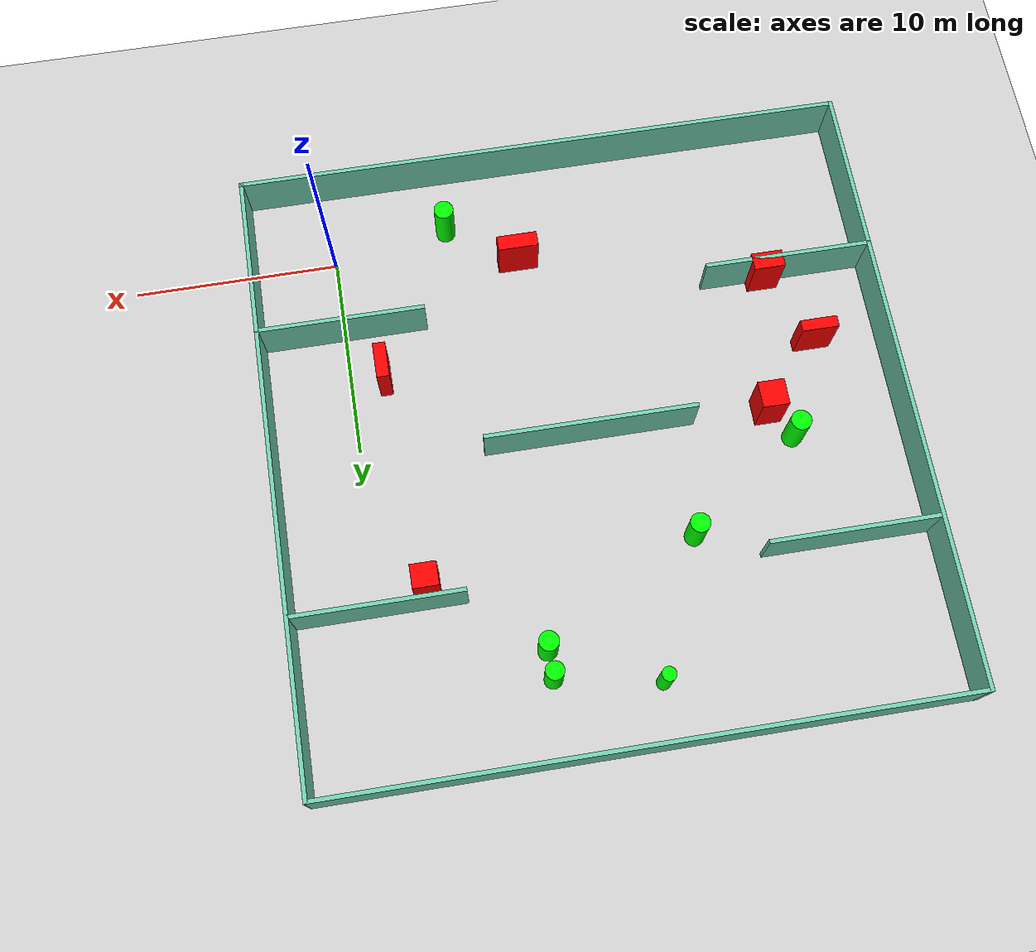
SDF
<sdf version="1.7">
 <world name="default">
  <light name="sun" type="directional">
   <pose>0 0 10 0 -0 0</pose>
   <diffuse>0.8 0.8 0.8 1</diffuse>
   <specular>0.2 0.2 0.2 1</specular>
   <attenuation>
    <range>1000</range>
    <constant>0.9</constant>
    <linear>0.01</linear>
    <quadratic>0.001</quadratic>
   </attenuation>
   <direction>-0.5 0.1 -0.9</direction>
   <spot><inner_angle>0</inner_angle><outer_angle>0</outer_angle><falloff>0</falloff></spot>
  </light>
  <model name="ground_plane">
   <static>1</static>
   <link name="link">
    <collision name="collision">
     <geometry><plane><normal>0 0 1</normal><size>100 100</size></plane></geometry>
     <surface>
      <contact><collide_bitmask>65535</collide_bitmask></contact>
      <friction><ode><mu>100</mu><mu2>50</mu2></ode></friction>
     </surface>
    </collision>
    <visual name="visual">
     <cast_shadows>0</cast_shadows>
     <geometry><plane><normal>0 0 1</normal><size>100 100</size></plane></geometry>
     <material>
      <script><uri>file://media/materials/scripts/gazebo.material</uri><name>Gazebo/Grey</name></script>
     </material>
    </visual>
   </link>
  </model>
  <gravity>0 0 -9.8</gravity>
  <magnetic_field>6e-06 2.3e-05 -4.2e-05</magnetic_field>
  <atmosphere type="adiabatic"/>
  <physics type="ode">
   <max_step_size>0.001</max_step_size>
   <real_time_factor>1</real_time_factor>
   <real_time_update_rate>1000</real_time_update_rate>
  </physics>
  <scene><ambient>0.4 0.4 0.4 1</ambient><background>0.7 0.7 0.7 1</background><shadows>1</shadows></scene>
  <spherical_coordinates>
   <surface_model>EARTH_WGS84</surface_model>
   <latitude_deg>0</latitude_deg>
   <longitude_deg>0</longitude_deg>
   <elevation>0</elevation>
   <heading_deg>0</heading_deg>
  </spherical_coordinates>
  <model name="my_base_walls">
   <link name="Wall_10">
    <collision name="Wall_10_Collision">
     <geometry><box><size>8.2 0.2 2.5</size></box></geometry>
     <pose>0 0 1.25 0 -0 0</pose>
    </collision>
    <visual name="Wall_10_Visual">
     <pose>0 0 1.25 0 -0 0</pose>
     <geometry><box><size>8.2 0.2 2.5</size></box></geometry>
     <material>
      <script><uri>file://media/materials/scripts/gazebo.material</uri><name>Gazebo/Grey</name></script>
      <ambient>0.435294 0.796078 0.67451 1</ambient>
     </material>
     <meta><layer>0</layer></meta>
    </visual>
    <pose>-11 -7 0 0 -0 0</pose>
   </link>
   <link name="Wall_12">
    <collision name="Wall_12_Collision">
     <geometry><box><size>8.2 0.2 2.5</size></box></geometry>
     <pose>0 0 1.25 0 -0 0</pose>
    </collision>
    <visual name="Wall_12_Visual">
     <pose>0 0 1.25 0 -0 0</pose>
     <geometry><box><size>8.2 0.2 2.5</size></box></geometry>
     <material>
      <script><uri>file://media/materials/scripts/gazebo.material</uri><name>Gazebo/Grey</name></script>
      <ambient>0.435294 0.796078 0.67451 1</ambient>
     </material>
     <meta><layer>0</layer></meta>
    </visual>
    <pose>-11 7 0 0 -0 0</pose>
   </link>
   <link name="Wall_14">
    <collision name="Wall_14_Collision">
     <geometry><box><size>8.2 0.2 2.5</size></box></geometry>
     <pose>0 0 1.25 0 -0 0</pose>
    </collision>
    <visual name="Wall_14_Visual">
     <pose>0 0 1.25 0 -0 0</pose>
     <geometry><box><size>8.2 0.2 2.5</size></box></geometry>
     <material>
      <script><uri>file://media/materials/scripts/gazebo.material</uri><name>Gazebo/Grey</name></script>
      <ambient>0.435294 0.796078 0.67451 1</ambient>
     </material>
     <meta><layer>0</layer></meta>
    </visual>
    <pose>11 7 0 0 -0 3.14159</pose>
   </link>
   <link name="Wall_16">
    <collision name="Wall_16_Collision">
     <geometry><box><size>10.2 0.2 2.5</size></box></geometry>
     <pose>0 0 1.25 0 -0 0</pose>
    </collision>
    <visual name="Wall_16_Visual">
     <pose>0 0 1.25 0 -0 0</pose>
     <geometry><box><size>10.2 0.2 2.5</size></box></geometry>
     <material>
      <script><uri>file://media/materials/scripts/gazebo.material</uri><name>Gazebo/Grey</name></script>
      <ambient>0.435294 0.796078 0.67451 1</ambient>
     </material>
     <meta><layer>0</layer></meta>
    </visual>
    <pose>0 0 0 0 -0 3.14159</pose>
   </link>
   <link name="Wall_2">
    <collision name="Wall_2_Collision">
     <geometry><box><size>30.2 0.2 2.5</size></box></geometry>
     <pose>0 0 1.25 0 -0 0</pose>
    </collision>
    <visual name="Wall_2_Visual">
     <pose>0 0 1.25 0 -0 0</pose>
     <geometry><box><size>30.2 0.2 2.5</size></box></geometry>
     <material>
      <script><uri>file://media/materials/scripts/gazebo.material</uri><name>Gazebo/Grey</name></script>
      <ambient>0.435294 0.796078 0.67451 1</ambient>
     </material>
     <meta><layer>0</layer></meta>
    </visual>
    <pose>0 -15 0 0 -0 3.14159</pose>
   </link>
   <link name="Wall_3">
    <collision name="Wall_3_Collision">
     <geometry><box><size>30.2 0.2 2.5</size></box></geometry>
     <pose>0 0 1.25 0 -0 0</pose>
    </collision>
    <visual name="Wall_3_Visual">
     <pose>0 0 1.25 0 -0 0</pose>
     <geometry><box><size>30.2 0.2 2.5</size></box></geometry>
     <material>
      <script><uri>file://media/materials/scripts/gazebo.material</uri><name>Gazebo/Grey</name></script>
      <ambient>0.435294 0.796078 0.67451 1</ambient>
     </material>
     <meta><layer>0</layer></meta>
    </visual>
    <pose>-15 0 0 0 -0 1.5708</pose>
   </link>
   <link name="Wall_4">
    <collision name="Wall_4_Collision">
     <geometry><box><size>30.2 0.2 2.5</size></box></geometry>
     <pose>0 0 1.25 0 -0 0</pose>
    </collision>
    <visual name="Wall_4_Visual">
     <pose>0 0 1.25 0 -0 0</pose>
     <geometry><box><size>30.2 0.2 2.5</size></box></geometry>
     <material>
      <script><uri>file://media/materials/scripts/gazebo.material</uri><name>Gazebo/Grey</name></script>
      <ambient>0.435294 0.796078 0.67451 1</ambient>
     </material>
     <meta><layer>0</layer></meta>
    </visual>
    <pose>0 15 0 0 -0 0</pose>
   </link>
   <link name="Wall_6">
    <collision name="Wall_6_Collision">
     <geometry><box><size>30.2 0.2 2.5</size></box></geometry>
     <pose>0 0 1.25 0 -0 0</pose>
    </collision>
    <visual name="Wall_6_Visual">
     <pose>0 0 1.25 0 -0 0</pose>
     <geometry><box><size>30.2 0.2 2.5</size></box></geometry>
     <material>
      <script><uri>file://media/materials/scripts/gazebo.material</uri><name>Gazebo/Grey</name></script>
      <ambient>0.435294 0.796078 0.67451 1</ambient>
     </material>
     <meta><layer>0</layer></meta>
    </visual>
    <pose>15 0 0 0 -0 1.5708</pose>
   </link>
   <link name="Wall_8">
    <collision name="Wall_8_Collision">
     <geometry><box><size>8.2 0.2 2.5</size></box></geometry>
     <pose>0 0 1.25 0 -0 0</pose>
    </collision>
    <visual name="Wall_8_Visual">
     <pose>0 0 1.25 0 -0 0</pose>
     <geometry><box><size>8.2 0.2 2.5</size></box></geometry>
     <material>
      <script><uri>file://media/materials/scripts/gazebo.material</uri><name>Gazebo/Grey</name></script>
      <ambient>0.435294 0.796078 0.67451 1</ambient>
     </material>
     <meta><layer>0</layer></meta>
    </visual>
    <pose>11 -7 0 0 -0 3.14159</pose>
   </link>
   <static>1</static>
   <pose>-11 11 0 0 -0 0</pose>
  </model>
  <model name="cylinder1">
   <static>1</static>
   <link name="link">
    <inertial>
     <mass>1</mass>
     <inertia><ixx>0.5</ixx><ixy>0</ixy><ixz>0</ixz><iyy>0.5</iyy><iyz>0</iyz><izz>1</izz></inertia>
    </inertial>
    <collision name="collision">
     <geometry><cylinder><radius>0.43888749122829146</radius><length>2.5</length></cylinder></geometry>
    </collision>
    <visual name="visual">
     <geometry><cylinder><radius>0.43888749122829146</radius><length>2.5</length></cylinder></geometry>
     <material>
      <ambient>0 1 0 1</ambient>
      <diffuse>0 1 0 1</diffuse>
      <specular>0.1 0.1 0.1 1</specular>
      <emissive>0 0 0 0</emissive>
     </material>
    </visual>
   </link>
   <pose>-7.368450171295438 22.194899479684388 1.25 0 0 0</pose>
  </model>
  <model name="cylinder2">
   <static>1</static>
   <link name="link">
    <inertial>
     <mass>1</mass>
     <inertia><ixx>0.5</ixx><ixy>0</ixy><ixz>0</ixz><iyy>0.5</iyy><iyz>0</iyz><izz>1</izz></inertia>
    </inertial>
    <collision name="collision">
     <geometry><cylinder><radius>0.4767275518398124</radius><length>2.5</length></cylinder></geometry>
    </collision>
    <visual name="visual">
     <geometry><cylinder><radius>0.4767275518398124</radius><length>2.5</length></cylinder></geometry>
     <material>
      <ambient>0 1 0 1</ambient>
      <diffuse>0 1 0 1</diffuse>
      <specular>0.1 0.1 0.1 1</specular>
      <emissive>0 0 0 0</emissive>
     </material>
    </visual>
   </link>
   <pose>-5.7322007475098875 -1.028252053346606 1.25 0 0 0</pose>
  </model>
  <model name="cylinder3">
   <static>1</static>
   <link name="link">
    <inertial>
     <mass>1</mass>
     <inertia><ixx>0.5</ixx><ixy>0</ixy><ixz>0</ixz><iyy>0.5</iyy><iyz>0</iyz><izz>1</izz></inertia>
    </inertial>
    <collision name="collision">
     <geometry><cylinder><radius>0.46726152988665937</radius><length>2.5</length></cylinder></geometry>
    </collision>
    <visual name="visual">
     <geometry><cylinder><radius>0.46726152988665937</radius><length>2.5</length></cylinder></geometry>
     <material>
      <ambient>0 1 0 1</ambient>
      <diffuse>0 1 0 1</diffuse>
      <specular>0.1 0.1 0.1 1</specular>
      <emissive>0 0 0 0</emissive>
     </material>
    </visual>
   </link>
   <pose>-7.32546245178195 20.870331599412086 1.25 0 0 0</pose>
  </model>
  <model name="cylinder4">
   <static>1</static>
   <link name="link">
    <inertial>
     <mass>1</mass>
     <inertia><ixx>0.5</ixx><ixy>0</ixy><ixz>0</ixz><iyy>0.5</iyy><iyz>0</iyz><izz>1</izz></inertia>
    </inertial>
    <collision name="collision">
     <geometry><cylinder><radius>0.4897578135235122</radius><length>2.5</length></cylinder></geometry>
    </collision>
    <visual name="visual">
     <geometry><cylinder><radius>0.4897578135235122</radius><length>2.5</length></cylinder></geometry>
     <material>
      <ambient>0 1 0 1</ambient>
      <diffuse>0 1 0 1</diffuse>
      <specular>0.1 0.1 0.1 1</specular>
      <emissive>0 0 0 0</emissive>
     </material>
    </visual>
   </link>
   <pose>-20.660820669420723 12.521226011527919 1.25 0 0 0</pose>
  </model>
  <model name="cylinder5">
   <static>1</static>
   <link name="link">
    <inertial>
     <mass>1</mass>
     <inertia><ixx>0.5</ixx><ixy>0</ixy><ixz>0</ixz><iyy>0.5</iyy><iyz>0</iyz><izz>1</izz></inertia>
    </inertial>
    <collision name="collision">
     <geometry><cylinder><radius>0.4711719951165161</radius><length>2.5</length></cylinder></geometry>
    </collision>
    <visual name="visual">
     <geometry><cylinder><radius>0.4711719951165161</radius><length>2.5</length></cylinder></geometry>
     <material>
      <ambient>0 1 0 1</ambient>
      <diffuse>0 1 0 1</diffuse>
      <specular>0.1 0.1 0.1 1</specular>
      <emissive>0 0 0 0</emissive>
     </material>
    </visual>
   </link>
   <pose>-15.009642060878546 16.629000536573123 1.25 0 0 0</pose>
  </model>
  <model name="cylinder6">
   <static>1</static>
   <link name="link">
    <inertial>
     <mass>1</mass>
     <inertia><ixx>0.5</ixx><ixy>0</ixy><ixz>0</ixz><iyy>0.5</iyy><iyz>0</iyz><izz>1</izz></inertia>
    </inertial>
    <collision name="collision">
     <geometry><cylinder><radius>0.33622802411859887</radius><length>2.5</length></cylinder></geometry>
    </collision>
    <visual name="visual">
     <geometry><cylinder><radius>0.33622802411859887</radius><length>2.5</length></cylinder></geometry>
     <material>
      <ambient>0 1 0 1</ambient>
      <diffuse>0 1 0 1</diffuse>
      <specular>0.1 0.1 0.1 1</specular>
      <emissive>0 0 0 0</emissive>
     </material>
    </visual>
   </link>
   <pose>-12.273175367445068 23.123124551227207 1.25 0 0 0</pose>
  </model>
  <model name="box1">
   <static>1</static>
   <link name="link">
    <inertial>
     <mass>1</mass>
     <inertia><ixx>0.083</ixx><ixy>0</ixy><ixz>0</ixz><iyy>0.083</iyy><iyz>0</iyz><izz>0.083</izz></inertia>
    </inertial>
    <collision name="collision">
     <geometry><box><size>0.6061652960985582 1.7513996166227046 2.5</size></box></geometry>
    </collision>
    <visual name="visual">
     <geometry><box><size>0.6061652960985582 1.7513996166227046 2.5</size></box></geometry>
     <material>
      <ambient>1 0 0 1</ambient>
      <diffuse>1 0 0 1</diffuse>
      <specular>0.1 0.1 0.1 1</specular>
      <emissive>0 0 0 0</emissive>
     </material>
    </visual>
    <sensor name="my_contact" type="contact">
     <contact><collision>box_collision</collision><topic>__default_topic__</topic></contact>
    </sensor>
   </link>
   <pose>-1.6787786419723645 6.406402352171092 1.25 0 0 0</pose>
  </model>
  <model name="box2">
   <static>1</static>
   <link name="link">
    <inertial>
     <mass>1</mass>
     <inertia><ixx>0.083</ixx><ixy>0</ixy><ixz>0</ixz><iyy>0.083</iyy><iyz>0</iyz><izz>0.083</izz></inertia>
    </inertial>
    <collision name="collision">
     <geometry><box><size>1.2344276424261378 1.134532743869155 2.5</size></box></geometry>
    </collision>
    <visual name="visual">
     <geometry><box><size>1.2344276424261378 1.134532743869155 2.5</size></box></geometry>
     <material>
      <ambient>1 0 0 1</ambient>
      <diffuse>1 0 0 1</diffuse>
      <specular>0.1 0.1 0.1 1</specular>
      <emissive>0 0 0 0</emissive>
     </material>
    </visual>
    <sensor name="my_contact" type="contact">
     <contact><collision>box_collision</collision><topic>__default_topic__</topic></contact>
    </sensor>
   </link>
   <pose>-2.3029491877256127 17.053189025296618 1.25 0 0 0</pose>
  </model>
  <model name="box3">
   <static>1</static>
   <link name="link">
    <inertial>
     <mass>1</mass>
     <inertia><ixx>0.083</ixx><ixy>0</ixy><ixz>0</ixz><iyy>0.083</iyy><iyz>0</iyz><izz>0.083</izz></inertia>
    </inertial>
    <collision name="collision">
     <geometry><box><size>1.7942133713412995 0.5537396568203784 2.5</size></box></geometry>
    </collision>
    <visual name="visual">
     <geometry><box><size>1.7942133713412995 0.5537396568203784 2.5</size></box></geometry>
     <material>
      <ambient>1 0 0 1</ambient>
      <diffuse>1 0 0 1</diffuse>
      <specular>0.1 0.1 0.1 1</specular>
      <emissive>0 0 0 0</emissive>
     </material>
    </visual>
    <sensor name="my_contact" type="contact">
     <contact><collision>box_collision</collision><topic>__default_topic__</topic></contact>
    </sensor>
   </link>
   <pose>-22.632698216918886 7.858043412480711 1.25 0 0 0</pose>
  </model>
  <model name="box4">
   <static>1</static>
   <link name="link">
    <inertial>
     <mass>1</mass>
     <inertia><ixx>0.083</ixx><ixy>0</ixy><ixz>0</ixz><iyy>0.083</iyy><iyz>0</iyz><izz>0.083</izz></inertia>
    </inertial>
    <collision name="collision">
     <geometry><box><size>1.9609854458395544 0.7335376502295743 2.5</size></box></geometry>
    </collision>
    <visual name="visual">
     <geometry><box><size>1.9609854458395544 0.7335376502295743 2.5</size></box></geometry>
     <material>
      <ambient>1 0 0 1</ambient>
      <diffuse>1 0 0 1</diffuse>
      <specular>0.1 0.1 0.1 1</specular>
      <emissive>0 0 0 0</emissive>
     </material>
    </visual>
    <sensor name="my_contact" type="contact">
     <contact><collision>box_collision</collision><topic>__default_topic__</topic></contact>
    </sensor>
   </link>
   <pose>-9.06546931495691 1.2323021476030007 1.25 0 0 0</pose>
  </model>
  <model name="box5">
   <static>1</static>
   <link name="link">
    <inertial>
     <mass>1</mass>
     <inertia><ixx>0.083</ixx><ixy>0</ixy><ixz>0</ixz><iyy>0.083</iyy><iyz>0</iyz><izz>0.083</izz></inertia>
    </inertial>
    <collision name="collision">
     <geometry><box><size>1.2786651066783288 1.2752930565629166 2.5</size></box></geometry>
    </collision>
    <visual name="visual">
     <geometry><box><size>1.2786651066783288 1.2752930565629166 2.5</size></box></geometry>
     <material>
      <ambient>1 0 0 1</ambient>
      <diffuse>1 0 0 1</diffuse>
      <specular>0.1 0.1 0.1 1</specular>
      <emissive>0 0 0 0</emissive>
     </material>
    </visual>
    <sensor name="my_contact" type="contact">
     <contact><collision>box_collision</collision><topic>__default_topic__</topic></contact>
    </sensor>
   </link>
   <pose>-19.67809459169237 10.99276469535545 1.25 0 0 0</pose>
  </model>
  <model name="box6">
   <static>1</static>
   <link name="link">
    <inertial>
     <mass>1</mass>
     <inertia><ixx>0.083</ixx><ixy>0</ixy><ixz>0</ixz><iyy>0.083</iyy><iyz>0</iyz><izz>0.083</izz></inertia>
    </inertial>
    <collision name="collision">
     <geometry><box><size>1.5034993887469863 0.8431522430933607 2.5</size></box></geometry>
    </collision>
    <visual name="visual">
     <geometry><box><size>1.5034993887469863 0.8431522430933607 2.5</size></box></geometry>
     <material>
      <ambient>1 0 0 1</ambient>
      <diffuse>1 0 0 1</diffuse>
      <specular>0.1 0.1 0.1 1</specular>
      <emissive>0 0 0 0</emissive>
     </material>
    </visual>
    <sensor name="my_contact" type="contact">
     <contact><collision>box_collision</collision><topic>__default_topic__</topic></contact>
    </sensor>
   </link>
   <pose>-20.951251235826856 4.160140777115027 1.25 0 0 0</pose>
  </model>
 </world>
</sdf>
